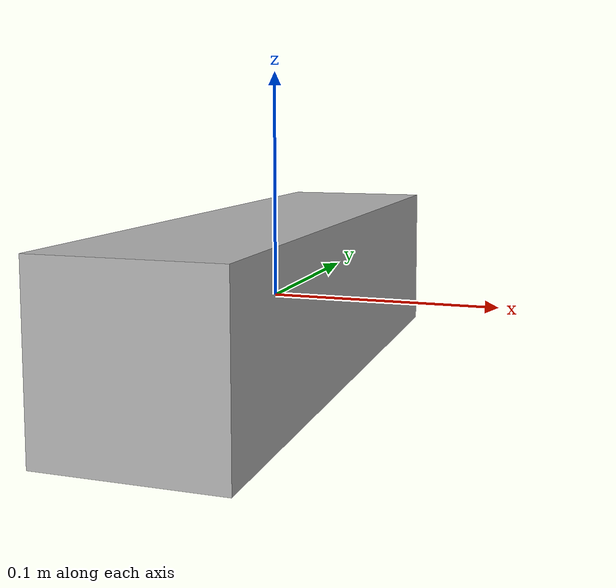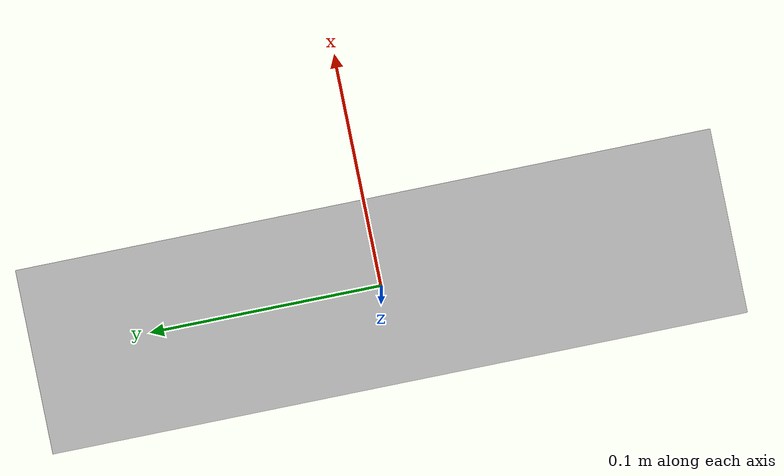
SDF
<?xml version="1.0" ?>
<sdf version="1.5">
  <model name="depthcamera">
    <static>false</static>

    <link name="link">
      <gravity>false</gravity>
      <collision name="collision">
        <geometry>
          <box>
            <size>0.073000 0.276000 0.072000</size>
          </box>
        </geometry>
      </collision>
      <visual name="visual">
        <geometry>
          <box>
            <size>0.073000 0.276000 0.072000</size>
          </box>
        </geometry>
      </visual>

      <sensor type="depth" name="camera">
        <always_on>true</always_on>
        <visualize>true</visualize>
        <camera>
          <horizontal_fov>1.047</horizontal_fov>
          <image>
            <width>640</width>
            <height>480</height>
            <format>R8G8B8</format>
          </image>

          <depth_camera> </depth_camera>

          <clip>
            <near>0.1</near>
              <far>100</far>
          </clip>
        </camera>

        <plugin name="camera_controller" filename="libgazebo_ros_openni_kinect.so">
          <alwaysOn>true</alwaysOn>
          <updateRate>10.0</updateRate>
          <cameraName>camera</cameraName>
          <frameName>camera_link</frameName>
          <imageTopicName>rgb/image_raw</imageTopicName>
          <depthImageTopicName>depth/image_raw</depthImageTopicName>
          <pointCloudTopicName>depth/points</pointCloudTopicName>
          <cameraInfoTopicName>rgb/camera_info</cameraInfoTopicName>
          <depthImageCameraInfoTopicName>depth/camera_info</depthImageCameraInfoTopicName>
          <pointCloudCutoff>0.4</pointCloudCutoff>
          <hackBaseline>0.07</hackBaseline>
          <distortionK1>0.0</distortionK1>
          <distortionK2>0.0</distortionK2>
          <distortionK3>0.0</distortionK3>
          <distortionT1>0.0</distortionT1>
          <distortionT2>0.0</distortionT2>
          <CxPrime>0.0</CxPrime>
          <Cx>0.0</Cx>
          <Cy>0.0</Cy>
          <focalLength>0.0</focalLength>
        </plugin>
      </sensor>

    </link>

  </model>
</sdf>
